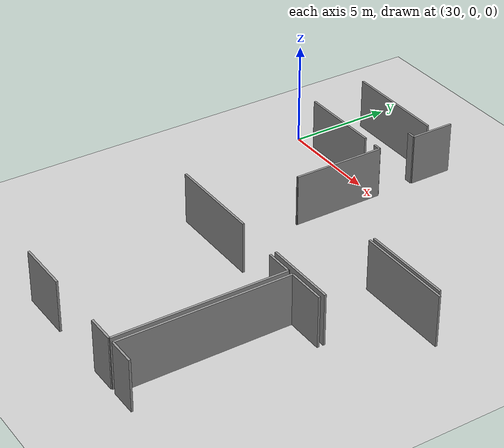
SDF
<sdf version="1.6">
 <world name="default">
  <model name="ground_plane">
   <static>1</static>
   <link name="link">
    <collision name="collision">
     <geometry><plane><normal>0 0 1</normal><size>100 100</size></plane></geometry>
     <surface><friction><ode><mu>100</mu><mu2>50</mu2></ode></friction></surface>
    </collision>
    <visual name="visual">
     <cast_shadows>0</cast_shadows>
     <geometry><plane><normal>0 0 1</normal><size>100 100</size></plane></geometry>
     <material>
      <script><uri>file://media/materials/scripts/gazebo.material</uri><name>Gazebo/Grey</name></script>
     </material>
    </visual>
   </link>
  </model>
  <model name="50041172">
   <static>1</static>
   <link name="Wall_78">
    <collision name="Wall_78_Collision">
     <geometry><box><size>1.34514623226 0.1 2.5</size></box></geometry>
     <pose>0.672573116128 0 1.25 0 0 0</pose>
    </collision>
    <visual name="Wall_78_Visual">
     <pose>0.672573116128 0 1.25 0 0 0</pose>
     <geometry><box><size>1.34514623226 0.1 2.5</size></box></geometry>
     <material>
      <script><uri>file://media/materials/scripts/gazebo.material</uri><name>Gazebo/Grey</name></script>
      <ambient>1 1 1 1</ambient>
     </material>
    </visual>
    <pose>106.181702709 -25.3429868851 0 0 0 0.0</pose>
   </link>
   <link name="Wall_79">
    <collision name="Wall_79_Collision">
     <geometry><box><size>8.20412181258 0.1 2.5</size></box></geometry>
     <pose>4.10206090629 0 1.25 0 0 0</pose>
    </collision>
    <visual name="Wall_79_Visual">
     <pose>4.10206090629 0 1.25 0 0 0</pose>
     <geometry><box><size>8.20412181258 0.1 2.5</size></box></geometry>
     <material>
      <script><uri>file://media/materials/scripts/gazebo.material</uri><name>Gazebo/Grey</name></script>
      <ambient>1 1 1 1</ambient>
     </material>
    </visual>
    <pose>107.526848941 -25.3429868851 0 0 0 -1.57079632679</pose>
   </link>
   <link name="Wall_80">
    <collision name="Wall_80_Collision">
     <geometry><box><size>1.35683211076 0.1 2.5</size></box></geometry>
     <pose>0.678416055381 0 1.25 0 0 0</pose>
    </collision>
    <visual name="Wall_80_Visual">
     <pose>0.678416055381 0 1.25 0 0 0</pose>
     <geometry><box><size>1.35683211076 0.1 2.5</size></box></geometry>
     <material>
      <script><uri>file://media/materials/scripts/gazebo.material</uri><name>Gazebo/Grey</name></script>
      <ambient>1 1 1 1</ambient>
     </material>
    </visual>
    <pose>107.526848941 -33.5471086977 0 0 0 3.14159265359</pose>
   </link>
   <link name="Wall_81">
    <collision name="Wall_81_Collision">
     <geometry><box><size>2.5477763655 0.1 2.5</size></box></geometry>
     <pose>1.27388818275 0 1.25 0 0 0</pose>
    </collision>
    <visual name="Wall_81_Visual">
     <pose>1.27388818275 0 1.25 0 0 0</pose>
     <geometry><box><size>2.5477763655 0.1 2.5</size></box></geometry>
     <material>
      <script><uri>file://media/materials/scripts/gazebo.material</uri><name>Gazebo/Grey</name></script>
      <ambient>1 1 1 1</ambient>
     </material>
    </visual>
    <pose>103.167000095 -33.5471086977 0 0 0 -3.14079496705</pose>
   </link>
   <link name="Wall_82">
    <collision name="Wall_82_Collision">
     <geometry><box><size>8.21339430313 0.1 2.5</size></box></geometry>
     <pose>4.10669715157 0 1.25 0 0 0</pose>
    </collision>
    <visual name="Wall_82_Visual">
     <pose>4.10669715157 0 1.25 0 0 0</pose>
     <geometry><box><size>8.21339430313 0.1 2.5</size></box></geometry>
     <material>
      <script><uri>file://media/materials/scripts/gazebo.material</uri><name>Gazebo/Grey</name></script>
      <ambient>1 1 1 1</ambient>
     </material>
    </visual>
    <pose>107.824711822 -33.5491410244 0 0 0 1.57079632679</pose>
   </link>
   <link name="Wall_83">
    <collision name="Wall_83_Collision">
     <geometry><box><size>1.88155345972 0.1 2.5</size></box></geometry>
     <pose>0.940776729859 0 1.25 0 0 0</pose>
    </collision>
    <visual name="Wall_83_Visual">
     <pose>0.940776729859 0 1.25 0 0 0</pose>
     <geometry><box><size>1.88155345972 0.1 2.5</size></box></geometry>
     <material>
      <script><uri>file://media/materials/scripts/gazebo.material</uri><name>Gazebo/Grey</name></script>
      <ambient>1 1 1 1</ambient>
     </material>
    </visual>
    <pose>107.824711822 -25.3357467213 0 0 0 0.0</pose>
   </link>
   <link name="Wall_87">
    <collision name="Wall_87_Collision">
     <geometry><box><size>1.30628317788 0.1 2.5</size></box></geometry>
     <pose>0.653141588941 0 1.25 0 0 0</pose>
    </collision>
    <visual name="Wall_87_Visual">
     <pose>0.653141588941 0 1.25 0 0 0</pose>
     <geometry><box><size>1.30628317788 0.1 2.5</size></box></geometry>
     <material>
      <script><uri>file://media/materials/scripts/gazebo.material</uri><name>Gazebo/Grey</name></script>
      <ambient>1 1 1 1</ambient>
     </material>
    </visual>
    <pose>109.130989807 -33.5528246166 0 0 0 3.13877274663</pose>
   </link>
   <link name="Wall_149">
    <collision name="Wall_149_Collision">
     <geometry><box><size>4.49398240767 0.1 2.5</size></box></geometry>
     <pose>2.24699120384 0 1.25 0 0 0</pose>
    </collision>
    <visual name="Wall_149_Visual">
     <pose>2.24699120384 0 1.25 0 0 0</pose>
     <geometry><box><size>4.49398240767 0.1 2.5</size></box></geometry>
     <material>
      <script><uri>file://media/materials/scripts/gazebo.material</uri><name>Gazebo/Grey</name></script>
      <ambient>1 1 1 1</ambient>
     </material>
    </visual>
    <pose>101.839509701 -21.0447429424 0 0 0 1.57079632679</pose>
   </link>
   <link name="Wall_150">
    <collision name="Wall_150_Collision">
     <geometry><box><size>0.394525419961 0.1 2.5</size></box></geometry>
     <pose>0.197262709981 0 1.25 0 0 0</pose>
    </collision>
    <visual name="Wall_150_Visual">
     <pose>0.197262709981 0 1.25 0 0 0</pose>
     <geometry><box><size>0.394525419961 0.1 2.5</size></box></geometry>
     <material>
      <script><uri>file://media/materials/scripts/gazebo.material</uri><name>Gazebo/Grey</name></script>
      <ambient>1 1 1 1</ambient>
     </material>
    </visual>
    <pose>101.839509701 -16.5507605348 0 0 0 3.14159265359</pose>
   </link>
   <link name="Wall_151">
    <collision name="Wall_151_Collision">
     <geometry><box><size>0.385888031501 0.1 2.5</size></box></geometry>
     <pose>0.192944015751 0 1.25 0 0 0</pose>
    </collision>
    <visual name="Wall_151_Visual">
     <pose>0.192944015751 0 1.25 0 0 0</pose>
     <geometry><box><size>0.385888031501 0.1 2.5</size></box></geometry>
     <material>
      <script><uri>file://media/materials/scripts/gazebo.material</uri><name>Gazebo/Grey</name></script>
      <ambient>1 1 1 1</ambient>
     </material>
    </visual>
    <pose>101.444984281 -14.6049347433 0 0 0 0.0</pose>
   </link>
   <link name="Wall_152">
    <collision name="Wall_152_Collision">
     <geometry><box><size>2.13635641929 0.1 2.5</size></box></geometry>
     <pose>1.06817820965 0 1.25 0 0 0</pose>
    </collision>
    <visual name="Wall_152_Visual">
     <pose>1.06817820965 0 1.25 0 0 0</pose>
     <geometry><box><size>2.13635641929 0.1 2.5</size></box></geometry>
     <material>
      <script><uri>file://media/materials/scripts/gazebo.material</uri><name>Gazebo/Grey</name></script>
      <ambient>1 1 1 1</ambient>
     </material>
    </visual>
    <pose>101.830872313 -14.6049347433 0 0 0 1.57079632679</pose>
   </link>
   <link name="Wall_155">
    <collision name="Wall_155_Collision">
     <geometry><box><size>4.4016385634 0.1 2.5</size></box></geometry>
     <pose>2.2008192817 0 1.25 0 0 0</pose>
    </collision>
    <visual name="Wall_155_Visual">
     <pose>2.2008192817 0 1.25 0 0 0</pose>
     <geometry><box><size>4.4016385634 0.1 2.5</size></box></geometry>
     <material>
      <script><uri>file://media/materials/scripts/gazebo.material</uri><name>Gazebo/Grey</name></script>
      <ambient>1 1 1 1</ambient>
     </material>
    </visual>
    <pose>111.940554444 -21.0720523324 0 0 0 3.14159265359</pose>
   </link>
   <link name="Wall_156">
    <collision name="Wall_156_Collision">
     <geometry><box><size>0.0277550514201 0.1 2.5</size></box></geometry>
     <pose>0.01387752571 0 1.25 0 0 0</pose>
    </collision>
    <visual name="Wall_156_Visual">
     <pose>0.01387752571 0 1.25 0 0 0</pose>
     <geometry><box><size>0.0277550514201 0.1 2.5</size></box></geometry>
     <material>
      <script><uri>file://media/materials/scripts/gazebo.material</uri><name>Gazebo/Grey</name></script>
      <ambient>1 1 1 1</ambient>
     </material>
    </visual>
    <pose>101.834555905 -21.0720523324 0 0 0 1.39135215977</pose>
   </link>
   <link name="Wall_161">
    <collision name="Wall_161_Collision">
     <geometry><box><size>4.08866191146 0.1 2.5</size></box></geometry>
     <pose>2.04433095573 0 1.25 0 0 0</pose>
    </collision>
    <visual name="Wall_161_Visual">
     <pose>2.04433095573 0 1.25 0 0 0</pose>
     <geometry><box><size>4.08866191146 0.1 2.5</size></box></geometry>
     <material>
      <script><uri>file://media/materials/scripts/gazebo.material</uri><name>Gazebo/Grey</name></script>
      <ambient>1 1 1 1</ambient>
     </material>
    </visual>
    <pose>100.748658347 -16.5484741672 0 0 0 3.14069172494</pose>
   </link>
   <link name="Wall_188">
    <collision name="Wall_188_Collision">
     <geometry><box><size>4.68248070877 0.1 2.5</size></box></geometry>
     <pose>2.34124035439 0 1.25 0 0 0</pose>
    </collision>
    <visual name="Wall_188_Visual">
     <pose>2.34124035439 0 1.25 0 0 0</pose>
     <geometry><box><size>4.68248070877 0.1 2.5</size></box></geometry>
     <material>
      <script><uri>file://media/materials/scripts/gazebo.material</uri><name>Gazebo/Grey</name></script>
      <ambient>1 1 1 1</ambient>
     </material>
    </visual>
    <pose>107.536248452 -21.3008161062 0 0 0 0.0</pose>
   </link>
   <link name="Wall_193">
    <collision name="Wall_193_Collision">
     <geometry><box><size>3.55466641263 0.1 2.5</size></box></geometry>
     <pose>1.77733320631 0 1.25 0 0 0</pose>
    </collision>
    <visual name="Wall_193_Visual">
     <pose>1.77733320631 0 1.25 0 0 0</pose>
     <geometry><box><size>3.55466641263 0.1 2.5</size></box></geometry>
     <material>
      <script><uri>file://media/materials/scripts/gazebo.material</uri><name>Gazebo/Grey</name></script>
      <ambient>1 1 1 1</ambient>
     </material>
    </visual>
    <pose>109.708932711 -25.0504588613 0 0 0 3.14159265359</pose>
   </link>
   <link name="Wall_194">
    <collision name="Wall_194_Collision">
     <geometry><box><size>4.73506716205 0.1 2.5</size></box></geometry>
     <pose>2.36753358102 0 1.25 0 0 0</pose>
    </collision>
    <visual name="Wall_194_Visual">
     <pose>2.36753358102 0 1.25 0 0 0</pose>
     <geometry><box><size>4.73506716205 0.1 2.5</size></box></geometry>
     <material>
      <script><uri>file://media/materials/scripts/gazebo.material</uri><name>Gazebo/Grey</name></script>
      <ambient>1 1 1 1</ambient>
     </material>
    </visual>
    <pose>103.68740275 -25.0504588613 0 0 0 3.14159265359</pose>
   </link>
   <link name="Wall_327">
    <collision name="Wall_327_Collision">
     <geometry><box><size>5.12033174388 0.1 2.5</size></box></geometry>
     <pose>2.56016587194 0 1.25 0 0 0</pose>
    </collision>
    <visual name="Wall_327_Visual">
     <pose>2.56016587194 0 1.25 0 0 0</pose>
     <geometry><box><size>5.12033174388 0.1 2.5</size></box></geometry>
     <material>
      <script><uri>file://media/materials/scripts/gazebo.material</uri><name>Gazebo/Grey</name></script>
      <ambient>1 1 1 1</ambient>
     </material>
    </visual>
    <pose>101.395319298 -13.4514623226 0 0 0 3.13945924411</pose>
   </link>
   <pose>-65.7 16.7659077197 0 0 0 0</pose>
  </model>
 </world>
</sdf>
